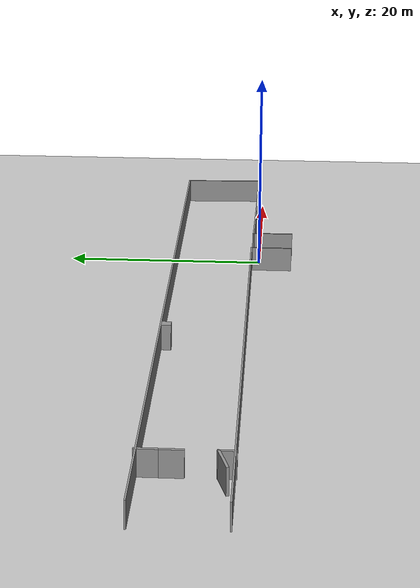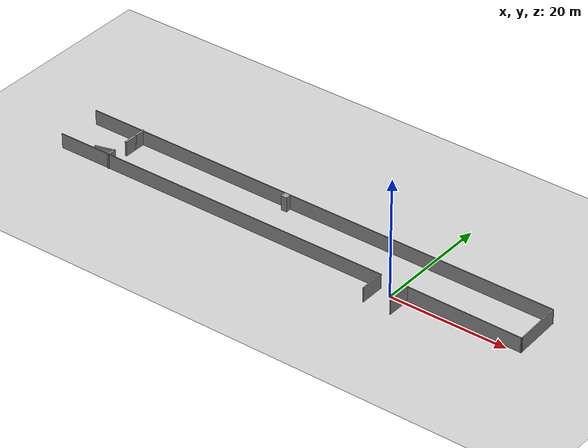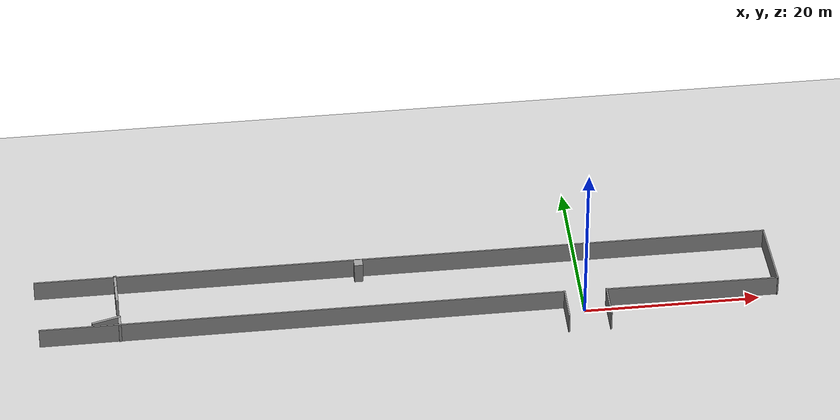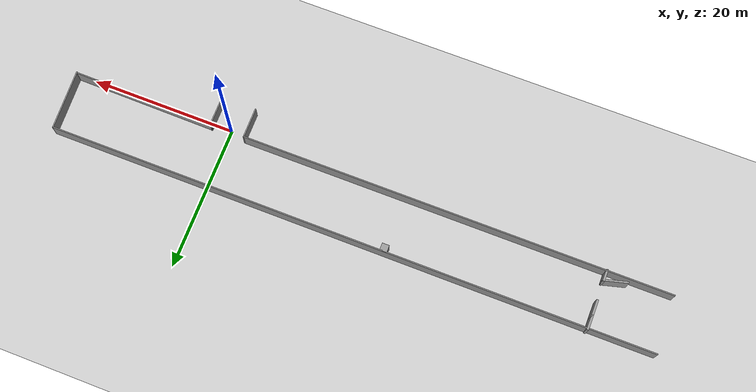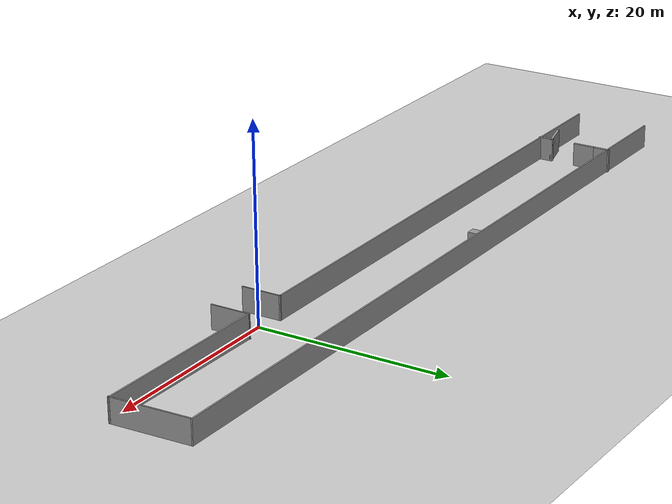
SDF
<sdf version="1.7">
 <world name="default">
  <light name="sun" type="directional">
   <pose>0 0 10 0 -0 0</pose>
   <diffuse>0.8 0.8 0.8 1</diffuse>
   <specular>0.2 0.2 0.2 1</specular>
   <attenuation>
    <range>1000</range>
    <constant>0.9</constant>
    <linear>0.01</linear>
    <quadratic>0.001</quadratic>
   </attenuation>
   <direction>-0.5 0.1 -0.9</direction>
   <spot><inner_angle>0</inner_angle><outer_angle>0</outer_angle><falloff>0</falloff></spot>
  </light>
  <model name="ground_plane">
   <static>1</static>
   <link name="link">
    <collision name="collision">
     <geometry><plane><normal>0 0 1</normal><size>100 100</size></plane></geometry>
     <surface>
      <contact><collide_bitmask>65535</collide_bitmask></contact>
      <friction><ode><mu>100</mu><mu2>50</mu2></ode></friction>
     </surface>
    </collision>
    <visual name="visual">
     <cast_shadows>0</cast_shadows>
     <geometry><plane><normal>0 0 1</normal><size>100 100</size></plane></geometry>
     <material>
      <script><uri>file://media/materials/scripts/gazebo.material</uri><name>Gazebo/Grey</name></script>
     </material>
    </visual>
   </link>
  </model>
  <gravity>0 0 -9.8</gravity>
  <magnetic_field>6e-06 2.3e-05 -4.2e-05</magnetic_field>
  <atmosphere type="adiabatic"/>
  <physics type="ode">
   <max_step_size>0.001</max_step_size>
   <real_time_factor>1</real_time_factor>
   <real_time_update_rate>1000</real_time_update_rate>
  </physics>
  <scene><ambient>0.4 0.4 0.4 1</ambient><background>0.7 0.7 0.7 1</background><shadows>1</shadows></scene>
  <audio><device>default</device></audio>
  <spherical_coordinates>
   <surface_model>EARTH_WGS84</surface_model>
   <latitude_deg>0</latitude_deg>
   <longitude_deg>0</longitude_deg>
   <elevation>0</elevation>
   <heading_deg>0</heading_deg>
  </spherical_coordinates>
  <model name="testworld5">
   <pose>-19.9493 2.88795 0 0 -0 0</pose>
   <link name="Wall_16">
    <collision name="Wall_16_Collision">
     <geometry><box><size>4.25 0.15 2.5</size></box></geometry>
     <pose>0 0 1.25 0 -0 0</pose>
    </collision>
    <visual name="Wall_16_Visual">
     <pose>0 0 1.25 0 -0 0</pose>
     <geometry><box><size>4.25 0.15 2.5</size></box></geometry>
     <material>
      <script><uri>file://media/materials/scripts/gazebo.material</uri><name>Gazebo/Grey</name></script>
      <ambient>1 1 1 1</ambient>
     </material>
     <meta><layer>0</layer></meta>
    </visual>
    <pose>17.6677 -4.1537 0 0 -0 1.5708</pose>
   </link>
   <link name="Wall_17">
    <collision name="Wall_17_Collision">
     <geometry><box><size>59.75 0.15 2.5</size></box></geometry>
     <pose>0 0 1.25 0 -0 0</pose>
    </collision>
    <visual name="Wall_17_Visual">
     <pose>0 0 1.25 0 -0 0</pose>
     <geometry><box><size>59.75 0.15 2.5</size></box></geometry>
     <material>
      <script><uri>file://media/materials/scripts/gazebo.material</uri><name>Gazebo/Grey</name></script>
      <ambient>1 1 1 1</ambient>
     </material>
     <meta><layer>0</layer></meta>
    </visual>
    <pose>-12.1323 -2.1037 0 0 -0 3.14159</pose>
   </link>
   <link name="Wall_19">
    <collision name="Wall_19_Collision">
     <geometry><box><size>84.057 0.15 2.5</size></box></geometry>
     <pose>0 0 1.25 0 -0 0</pose>
    </collision>
    <visual name="Wall_19_Visual">
     <pose>0 0 1.25 0 -0 0</pose>
     <geometry><box><size>84.057 0.15 2.5</size></box></geometry>
     <material>
      <script><uri>file://media/materials/scripts/gazebo.material</uri><name>Gazebo/Grey</name></script>
      <ambient>1 1 1 1</ambient>
     </material>
     <meta><layer>0</layer></meta>
    </visual>
    <pose>-0.163462 5.85551 0 0 -0 -0.001797</pose>
   </link>
   <link name="Wall_20">
    <collision name="Wall_20_Collision">
     <geometry><box><size>8.36294 0.15 2.5</size></box></geometry>
     <pose>0 0 1.25 0 -0 0</pose>
    </collision>
    <visual name="Wall_20_Visual">
     <pose>0 0 1.25 0 -0 0</pose>
     <geometry><box><size>8.36294 0.15 2.5</size></box></geometry>
     <material>
      <script><uri>file://media/materials/scripts/gazebo.material</uri><name>Gazebo/Grey</name></script>
      <ambient>1 1 1 1</ambient>
     </material>
     <meta><layer>0</layer></meta>
    </visual>
    <pose>41.9521 1.60611 0 0 -0 -1.53132</pose>
   </link>
   <link name="Wall_21">
    <collision name="Wall_21_Collision">
     <geometry><box><size>19.808 0.15 2.5</size></box></geometry>
     <pose>0 0 1.25 0 -0 0</pose>
    </collision>
    <visual name="Wall_21_Visual">
     <pose>0 0 1.25 0 -0 0</pose>
     <geometry><box><size>19.808 0.15 2.5</size></box></geometry>
     <material>
      <script><uri>file://media/materials/scripts/gazebo.material</uri><name>Gazebo/Grey</name></script>
      <ambient>1 1 1 1</ambient>
     </material>
     <meta><layer>0</layer></meta>
    </visual>
    <pose>32.2857 -2.32027 0 0 -0 3.13079</pose>
   </link>
   <link name="Wall_22">
    <collision name="Wall_22_Collision">
     <geometry><box><size>4.25 0.15 2.5</size></box></geometry>
     <pose>0 0 1.25 0 -0 0</pose>
    </collision>
    <visual name="Wall_22_Visual">
     <pose>0 0 1.25 0 -0 0</pose>
     <geometry><box><size>4.25 0.15 2.5</size></box></geometry>
     <material>
      <script><uri>file://media/materials/scripts/gazebo.material</uri><name>Gazebo/Grey</name></script>
      <ambient>1 1 1 1</ambient>
     </material>
     <meta><layer>0</layer></meta>
    </visual>
    <pose>22.4572 -4.21761 0 0 -0 -1.5708</pose>
   </link>
   <link name="Wall_25">
    <collision name="Wall_25_Collision">
     <geometry><box><size>1.01 1 2.5</size></box></geometry>
     <pose>0 0 1.25 0 -0 0</pose>
    </collision>
    <visual name="Wall_25_Visual">
     <pose>0 0 1.25 0 -0 0</pose>
     <geometry><box><size>1.01 1 2.5</size></box></geometry>
     <material>
      <script><uri>file://media/materials/scripts/gazebo.material</uri><name>Gazebo/Grey</name></script>
      <ambient>1 1 1 1</ambient>
     </material>
     <meta><layer>0</layer></meta>
    </visual>
    <pose>-5.12637 5.3738 0 0 -0 -1.5708</pose>
   </link>
   <link name="Wall_27">
    <collision name="Wall_27_Collision">
     <geometry><box><size>2.088 0.3 2.5</size></box></geometry>
     <pose>0 0 1.25 0 -0 0</pose>
    </collision>
    <visual name="Wall_27_Visual">
     <pose>0 0 1.25 0 -0 0</pose>
     <geometry><box><size>2.088 0.3 2.5</size></box></geometry>
     <material>
      <script><uri>file://media/materials/scripts/gazebo.material</uri><name>Gazebo/Grey</name></script>
      <ambient>1 1 1 1</ambient>
     </material>
     <meta><layer>0</layer></meta>
    </visual>
    <pose>-32.9363 5.10061 0 0 -0 -1.5708</pose>
   </link>
   <link name="Wall_29">
    <collision name="Wall_29_Collision">
     <geometry><box><size>1.64991 0.3 2.5</size></box></geometry>
     <pose>0 0 1.25 0 -0 0</pose>
    </collision>
    <visual name="Wall_29_Visual">
     <pose>0 0 1.25 0 -0 0</pose>
     <geometry><box><size>1.64991 0.3 2.5</size></box></geometry>
     <material>
      <script><uri>file://media/materials/scripts/gazebo.material</uri><name>Gazebo/Grey</name></script>
      <ambient>1 1 1 1</ambient>
     </material>
     <meta><layer>0</layer></meta>
    </visual>
    <pose>-32.8753 -1.45239 0 0 -0 1.5708</pose>
   </link>
   <link name="Wall_31">
    <collision name="Wall_31_Collision">
     <geometry><box><size>2.4 0.3 2.5</size></box></geometry>
     <pose>0 0 1.25 0 -0 0</pose>
    </collision>
    <visual name="Wall_31_Visual">
     <pose>0 0 1.25 0 -0 0</pose>
     <geometry><box><size>2.4 0.3 2.5</size></box></geometry>
     <material>
      <script><uri>file://media/materials/scripts/gazebo.material</uri><name>Gazebo/Grey</name></script>
      <ambient>1 1 1 1</ambient>
     </material>
     <meta><layer>0</layer></meta>
    </visual>
    <pose>-32.9363 3.15661 0 0 -0 -1.5708</pose>
   </link>
   <link name="Wall_33">
    <collision name="Wall_33_Collision">
     <geometry><box><size>3.35 0.25 2.5</size></box></geometry>
     <pose>0 0 1.25 0 -0 0</pose>
    </collision>
    <visual name="Wall_33_Visual">
     <pose>0 0 1.25 0 -0 0</pose>
     <geometry><box><size>3.35 0.25 2.5</size></box></geometry>
     <material>
      <script><uri>file://media/materials/scripts/gazebo.material</uri><name>Gazebo/Grey</name></script>
      <ambient>1 1 1 1</ambient>
     </material>
     <meta><layer>0</layer></meta>
    </visual>
    <pose>-34.3723 -1.17839 0 0 -0 -2.87987</pose>
   </link>
   <static>1</static>
  </model>
 </world>
</sdf>
